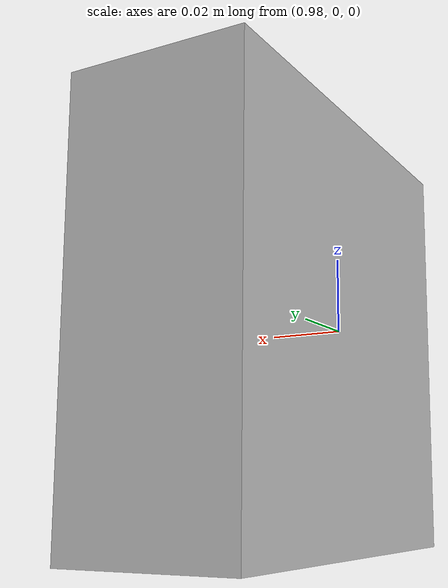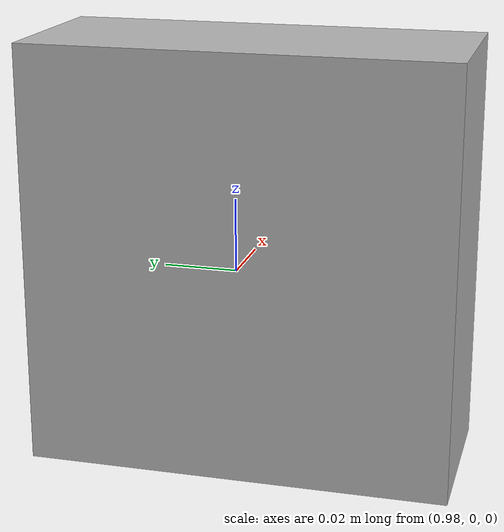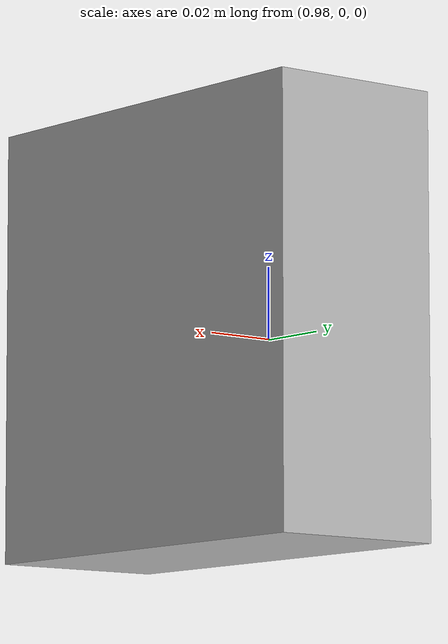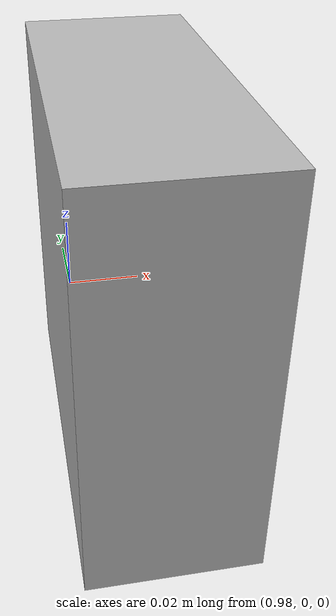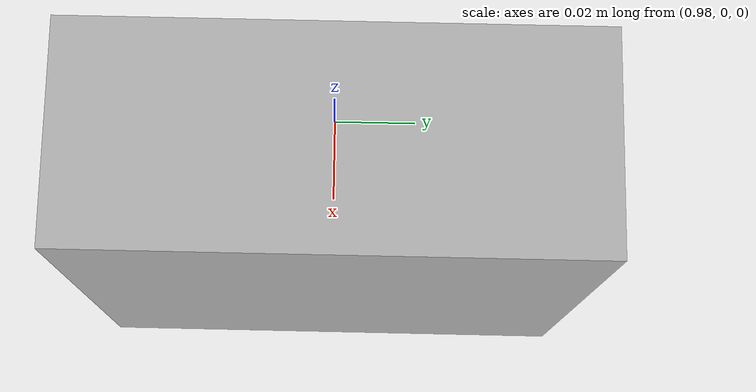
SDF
<?xml version="1.0" ?>
<sdf version="1.5">
  <model name="mpnet_box2">
    <pose frame="world">1 0 0.0 0 0 0</pose>
    <link name="mpnet_box2_link">
      <inertial>
        <mass>0.1</mass>
      </inertial>
      <visual name="mpnet_box2_visual">
        <geometry>
          <box>
            <size>0.05 0.12 0.12</size>
          </box>
        </geometry>
      </visual>

      <collision name="mpnet_box2_collision">
        <geometry>
          <box>
            <size>0.05 0.12 0.12</size>
          </box>
        </geometry>
      </collision>

    </link>
  </model>
</sdf>
